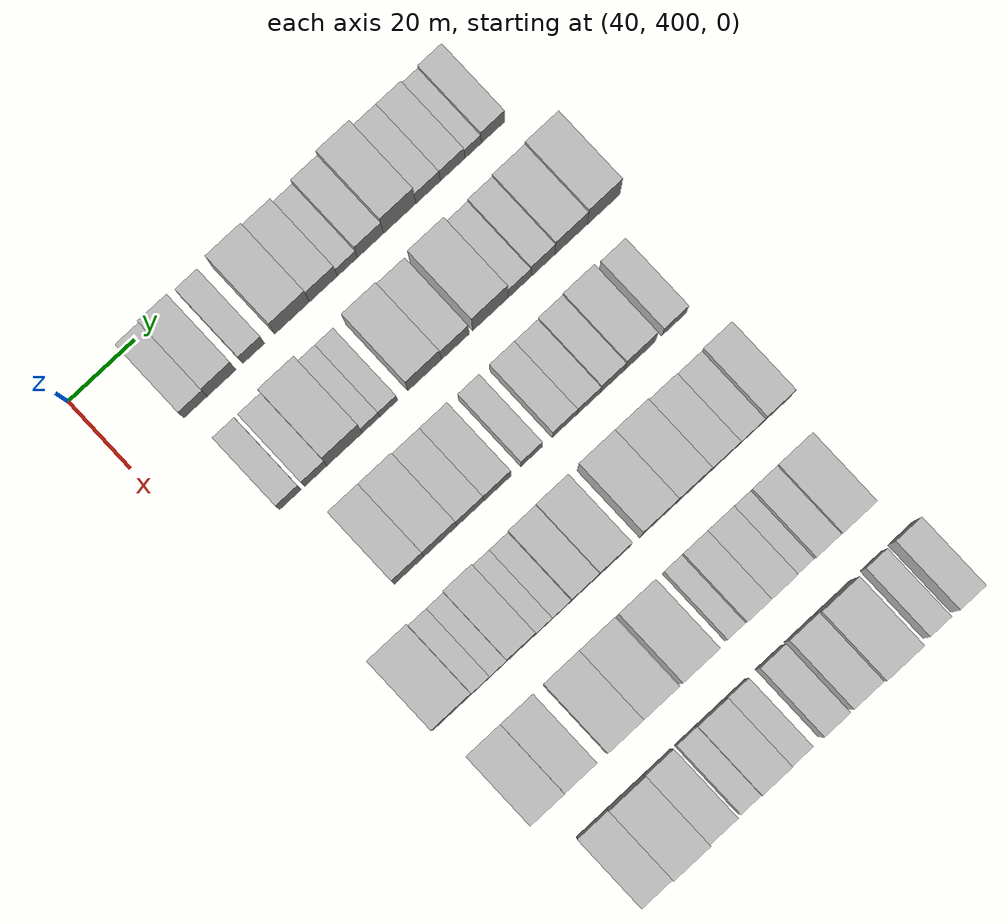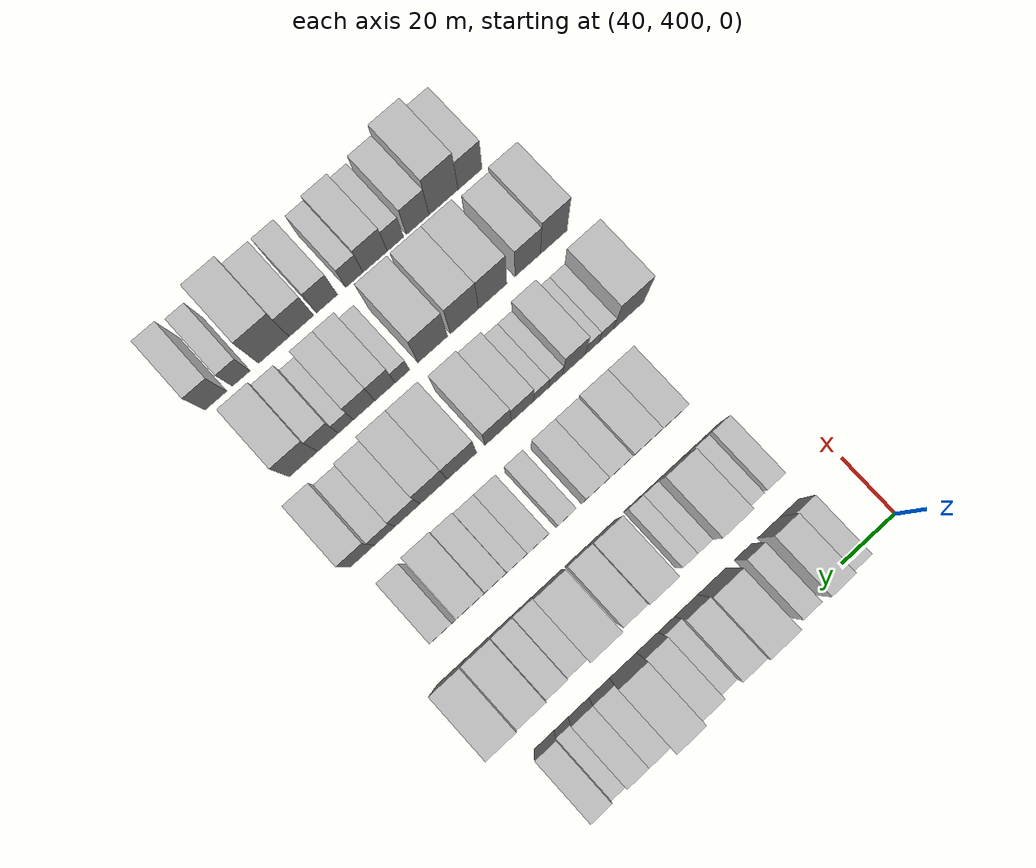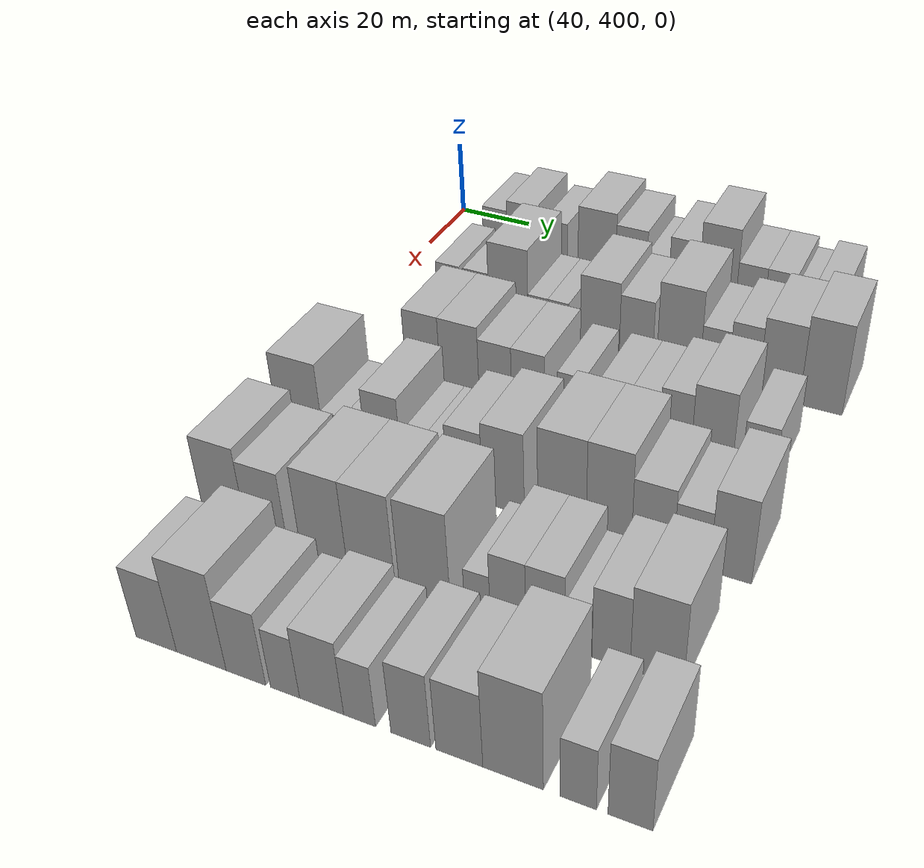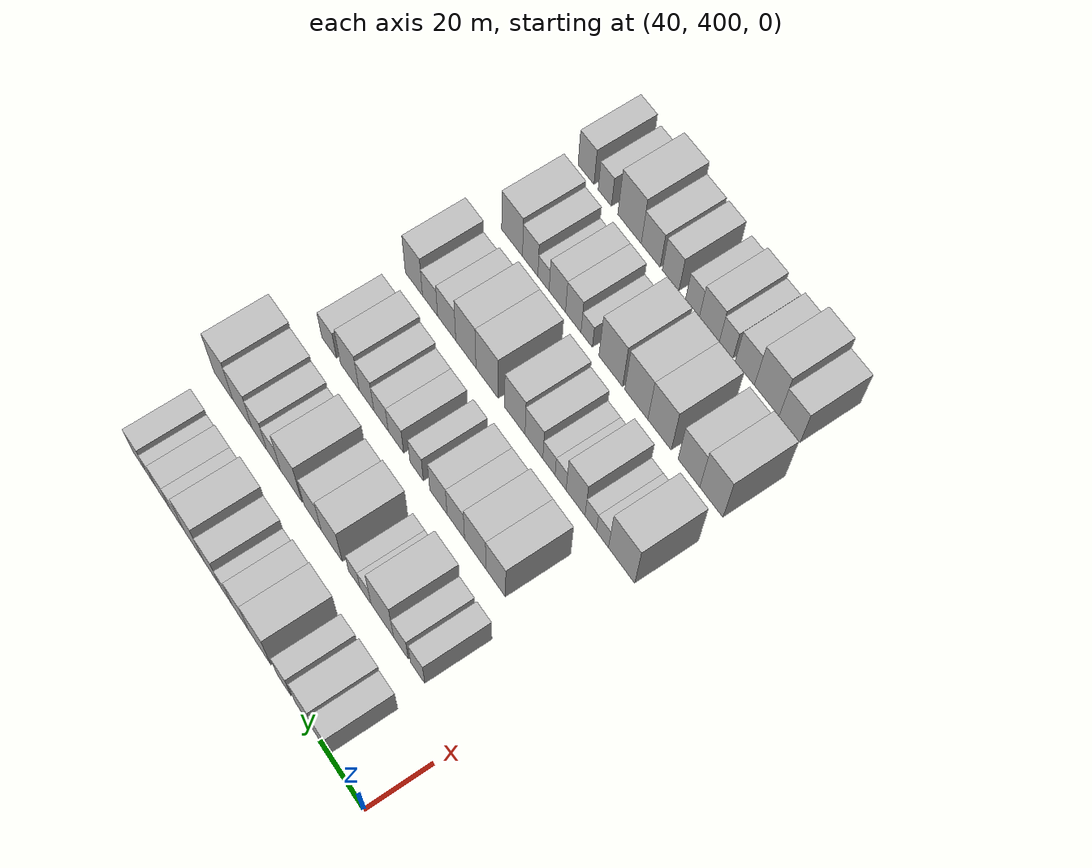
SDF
<sdf version="1.6">
 <world name="default">
  <model name="building_111">
   <static>1</static>
   <pose>50.0000 419.6284 0 0.000000 0.000000 0.000000</pose>
   <link name="link">
    <pose>0 0 7.50 0 0 0</pose>
    <collision name="collision"><geometry><box><size>20.0000 6.9505 15.0000</size></box></geometry></collision>
    <visual name="visual">
     <cast_shadows>0</cast_shadows>
     <geometry><box><size>20.0000 6.9505 15.0000</size></box></geometry>
     <material>
      <script>
       <uri>model://HANNAS_wall/materials/scripts</uri>
       <uri>model://HANNAS_wall/materials/textures</uri>
       <name>vrc/HANNAS_wall</name>
      </script>
     </material>
    </visual>
   </link>
  </model>
  <model name="building_112">
   <static>1</static>
   <pose>50.0000 427.3668 0 0.000000 0.000000 0.000000</pose>
   <link name="link">
    <pose>0 0 9.00 0 0 0</pose>
    <collision name="collision"><geometry><box><size>20.0000 8.5264 18.0000</size></box></geometry></collision>
    <visual name="visual">
     <cast_shadows>0</cast_shadows>
     <geometry><box><size>20.0000 8.5264 18.0000</size></box></geometry>
     <material>
      <script>
       <uri>model://HANNAS_wall/materials/scripts</uri>
       <uri>model://HANNAS_wall/materials/textures</uri>
       <name>vrc/HANNAS_wall</name>
      </script>
     </material>
    </visual>
   </link>
  </model>
  <model name="building_113">
   <static>1</static>
   <pose>50.0000 436.8863 0 0.000000 0.000000 0.000000</pose>
   <link name="link">
    <pose>0 0 7.50 0 0 0</pose>
    <collision name="collision"><geometry><box><size>20.0000 6.5126 15.0000</size></box></geometry></collision>
    <visual name="visual">
     <cast_shadows>0</cast_shadows>
     <geometry><box><size>20.0000 6.5126 15.0000</size></box></geometry>
     <material>
      <script>
       <uri>model://HANNAS_wall/materials/scripts</uri>
       <uri>model://HANNAS_wall/materials/textures</uri>
       <name>vrc/HANNAS_wall</name>
      </script>
     </material>
    </visual>
   </link>
  </model>
  <model name="building_114">
   <static>1</static>
   <pose>50.0000 448.3292 0 0.000000 0.000000 0.000000</pose>
   <link name="link">
    <pose>0 0 10.50 0 0 0</pose>
    <collision name="collision"><geometry><box><size>20.0000 10.3732 21.0000</size></box></geometry></collision>
    <visual name="visual">
     <cast_shadows>0</cast_shadows>
     <geometry><box><size>20.0000 10.3732 21.0000</size></box></geometry>
     <material>
      <script>
       <uri>model://HANNAS_wall/materials/scripts</uri>
       <uri>model://HANNAS_wall/materials/textures</uri>
       <name>vrc/HANNAS_wall</name>
      </script>
     </material>
    </visual>
   </link>
  </model>
  <model name="building_115">
   <static>1</static>
   <pose>50.0000 457.6762 0 0.000000 0.000000 0.000000</pose>
   <link name="link">
    <pose>0 0 9.00 0 0 0</pose>
    <collision name="collision"><geometry><box><size>20.0000 8.3207 18.0000</size></box></geometry></collision>
    <visual name="visual">
     <cast_shadows>0</cast_shadows>
     <geometry><box><size>20.0000 8.3207 18.0000</size></box></geometry>
     <material>
      <script>
       <uri>model://HANNAS_wall/materials/scripts</uri>
       <uri>model://HANNAS_wall/materials/textures</uri>
       <name>vrc/HANNAS_wall</name>
      </script>
     </material>
    </visual>
   </link>
  </model>
  <model name="building_116">
   <static>1</static>
   <pose>50.0000 464.8121 0 0.000000 0.000000 0.000000</pose>
   <link name="link">
    <pose>0 0 6.00 0 0 0</pose>
    <collision name="collision"><geometry><box><size>20.0000 5.9510 12.0000</size></box></geometry></collision>
    <visual name="visual">
     <cast_shadows>0</cast_shadows>
     <geometry><box><size>20.0000 5.9510 12.0000</size></box></geometry>
     <material>
      <script>
       <uri>model://HANNAS_wall/materials/scripts</uri>
       <uri>model://HANNAS_wall/materials/textures</uri>
       <name>vrc/HANNAS_wall</name>
      </script>
     </material>
    </visual>
   </link>
  </model>
  <model name="building_117">
   <static>1</static>
   <pose>50.0000 471.6848 0 0.000000 0.000000 0.000000</pose>
   <link name="link">
    <pose>0 0 9.00 0 0 0</pose>
    <collision name="collision"><geometry><box><size>20.0000 7.7943 18.0000</size></box></geometry></collision>
    <visual name="visual">
     <cast_shadows>0</cast_shadows>
     <geometry><box><size>20.0000 7.7943 18.0000</size></box></geometry>
     <material>
      <script>
       <uri>model://HANNAS_wall/materials/scripts</uri>
       <uri>model://HANNAS_wall/materials/textures</uri>
       <name>vrc/HANNAS_wall</name>
      </script>
     </material>
    </visual>
   </link>
  </model>
  <model name="building_118">
   <static>1</static>
   <pose>50.0000 480.4277 0 0.000000 0.000000 0.000000</pose>
   <link name="link">
    <pose>0 0 12.00 0 0 0</pose>
    <collision name="collision"><geometry><box><size>20.0000 9.6914 24.0000</size></box></geometry></collision>
    <visual name="visual">
     <cast_shadows>0</cast_shadows>
     <geometry><box><size>20.0000 9.6914 24.0000</size></box></geometry>
     <material>
      <script>
       <uri>model://HANNAS_wall/materials/scripts</uri>
       <uri>model://HANNAS_wall/materials/textures</uri>
       <name>vrc/HANNAS_wall</name>
      </script>
     </material>
    </visual>
   </link>
  </model>
  <model name="building_119">
   <static>1</static>
   <pose>50.0000 488.9293 0 0.000000 0.000000 0.000000</pose>
   <link name="link">
    <pose>0 0 7.50 0 0 0</pose>
    <collision name="collision"><geometry><box><size>20.0000 7.3118 15.0000</size></box></geometry></collision>
    <visual name="visual">
     <cast_shadows>0</cast_shadows>
     <geometry><box><size>20.0000 7.3118 15.0000</size></box></geometry>
     <material>
      <script>
       <uri>model://HANNAS_wall/materials/scripts</uri>
       <uri>model://HANNAS_wall/materials/textures</uri>
       <name>vrc/HANNAS_wall</name>
      </script>
     </material>
    </visual>
   </link>
  </model>
  <model name="building_120">
   <static>1</static>
   <pose>50.0000 496.2499 0 0.000000 0.000000 0.000000</pose>
   <link name="link">
    <pose>0 0 7.50 0 0 0</pose>
    <collision name="collision"><geometry><box><size>20.0000 7.3295 15.0000</size></box></geometry></collision>
    <visual name="visual">
     <cast_shadows>0</cast_shadows>
     <geometry><box><size>20.0000 7.3295 15.0000</size></box></geometry>
     <material>
      <script>
       <uri>model://HANNAS_wall/materials/scripts</uri>
       <uri>model://HANNAS_wall/materials/textures</uri>
       <name>vrc/HANNAS_wall</name>
      </script>
     </material>
    </visual>
   </link>
  </model>
  <model name="building_121">
   <static>1</static>
   <pose>50.0000 502.3638 0 0.000000 0.000000 0.000000</pose>
   <link name="link">
    <pose>0 0 6.00 0 0 0</pose>
    <collision name="collision"><geometry><box><size>20.0000 4.8982 12.0000</size></box></geometry></collision>
    <visual name="visual">
     <cast_shadows>0</cast_shadows>
     <geometry><box><size>20.0000 4.8982 12.0000</size></box></geometry>
     <material>
      <script>
       <uri>model://HANNAS_wall/materials/scripts</uri>
       <uri>model://HANNAS_wall/materials/textures</uri>
       <name>vrc/HANNAS_wall</name>
      </script>
     </material>
    </visual>
   </link>
  </model>
  <model name="building_122">
   <static>1</static>
   <pose>50.0000 508.3706 0 0.000000 0.000000 0.000000</pose>
   <link name="link">
    <pose>0 0 7.50 0 0 0</pose>
    <collision name="collision"><geometry><box><size>20.0000 7.1154 15.0000</size></box></geometry></collision>
    <visual name="visual">
     <cast_shadows>0</cast_shadows>
     <geometry><box><size>20.0000 7.1154 15.0000</size></box></geometry>
     <material>
      <script>
       <uri>model://HANNAS_wall/materials/scripts</uri>
       <uri>model://HANNAS_wall/materials/textures</uri>
       <name>vrc/HANNAS_wall</name>
      </script>
     </material>
    </visual>
   </link>
  </model>
  <model name="building_224">
   <static>1</static>
   <pose>79.0000 421.0408 0 0.000000 0.000000 0.000000</pose>
   <link name="link">
    <pose>0 0 7.50 0 0 0</pose>
    <collision name="collision"><geometry><box><size>20.0000 6.4064 15.0000</size></box></geometry></collision>
    <visual name="visual">
     <cast_shadows>0</cast_shadows>
     <geometry><box><size>20.0000 6.4064 15.0000</size></box></geometry>
     <material>
      <script>
       <uri>model://HANNAS_wall/materials/scripts</uri>
       <uri>model://HANNAS_wall/materials/textures</uri>
       <name>vrc/HANNAS_wall</name>
      </script>
     </material>
    </visual>
   </link>
  </model>
  <model name="building_225">
   <static>1</static>
   <pose>79.0000 428.5997 0 0.000000 0.000000 0.000000</pose>
   <link name="link">
    <pose>0 0 7.50 0 0 0</pose>
    <collision name="collision"><geometry><box><size>20.0000 6.7115 15.0000</size></box></geometry></collision>
    <visual name="visual">
     <cast_shadows>0</cast_shadows>
     <geometry><box><size>20.0000 6.7115 15.0000</size></box></geometry>
     <material>
      <script>
       <uri>model://HANNAS_wall/materials/scripts</uri>
       <uri>model://HANNAS_wall/materials/textures</uri>
       <name>vrc/HANNAS_wall</name>
      </script>
     </material>
    </visual>
   </link>
  </model>
  <model name="building_226">
   <static>1</static>
   <pose>79.0000 437.1567 0 0.000000 0.000000 0.000000</pose>
   <link name="link">
    <pose>0 0 12.00 0 0 0</pose>
    <collision name="collision"><geometry><box><size>20.0000 10.4025 24.0000</size></box></geometry></collision>
    <visual name="visual">
     <cast_shadows>0</cast_shadows>
     <geometry><box><size>20.0000 10.4025 24.0000</size></box></geometry>
     <material>
      <script>
       <uri>model://HANNAS_wall/materials/scripts</uri>
       <uri>model://HANNAS_wall/materials/textures</uri>
       <name>vrc/HANNAS_wall</name>
      </script>
     </material>
    </visual>
   </link>
  </model>
  <model name="building_227">
   <static>1</static>
   <pose>79.0000 444.9773 0 0.000000 0.000000 0.000000</pose>
   <link name="link">
    <pose>0 0 6.00 0 0 0</pose>
    <collision name="collision"><geometry><box><size>20.0000 5.2385 12.0000</size></box></geometry></collision>
    <visual name="visual">
     <cast_shadows>0</cast_shadows>
     <geometry><box><size>20.0000 5.2385 12.0000</size></box></geometry>
     <material>
      <script>
       <uri>model://HANNAS_wall/materials/scripts</uri>
       <uri>model://HANNAS_wall/materials/textures</uri>
       <name>vrc/HANNAS_wall</name>
      </script>
     </material>
    </visual>
   </link>
  </model>
  <model name="building_228">
   <static>1</static>
   <pose>79.0000 450.2814 0 0.000000 0.000000 0.000000</pose>
   <link name="link">
    <pose>0 0 6.00 0 0 0</pose>
    <collision name="collision"><geometry><box><size>20.0000 5.3697 12.0000</size></box></geometry></collision>
    <visual name="visual">
     <cast_shadows>0</cast_shadows>
     <geometry><box><size>20.0000 5.3697 12.0000</size></box></geometry>
     <material>
      <script>
       <uri>model://HANNAS_wall/materials/scripts</uri>
       <uri>model://HANNAS_wall/materials/textures</uri>
       <name>vrc/HANNAS_wall</name>
      </script>
     </material>
    </visual>
   </link>
  </model>
  <model name="building_229">
   <static>1</static>
   <pose>79.0000 460.9505 0 0.000000 0.000000 0.000000</pose>
   <link name="link">
    <pose>0 0 10.50 0 0 0</pose>
    <collision name="collision"><geometry><box><size>20.0000 9.9686 21.0000</size></box></geometry></collision>
    <visual name="visual">
     <cast_shadows>0</cast_shadows>
     <geometry><box><size>20.0000 9.9686 21.0000</size></box></geometry>
     <material>
      <script>
       <uri>model://HANNAS_wall/materials/scripts</uri>
       <uri>model://HANNAS_wall/materials/textures</uri>
       <name>vrc/HANNAS_wall</name>
      </script>
     </material>
    </visual>
   </link>
  </model>
  <model name="building_230">
   <static>1</static>
   <pose>79.0000 470.1178 0 0.000000 0.000000 0.000000</pose>
   <link name="link">
    <pose>0 0 9.00 0 0 0</pose>
    <collision name="collision"><geometry><box><size>20.0000 8.3659 18.0000</size></box></geometry></collision>
    <visual name="visual">
     <cast_shadows>0</cast_shadows>
     <geometry><box><size>20.0000 8.3659 18.0000</size></box></geometry>
     <material>
      <script>
       <uri>model://HANNAS_wall/materials/scripts</uri>
       <uri>model://HANNAS_wall/materials/textures</uri>
       <name>vrc/HANNAS_wall</name>
      </script>
     </material>
    </visual>
   </link>
  </model>
  <model name="building_231">
   <static>1</static>
   <pose>79.0000 480.5855 0 0.000000 0.000000 0.000000</pose>
   <link name="link">
    <pose>0 0 12.00 0 0 0</pose>
    <collision name="collision"><geometry><box><size>20.0000 10.5695 24.0000</size></box></geometry></collision>
    <visual name="visual">
     <cast_shadows>0</cast_shadows>
     <geometry><box><size>20.0000 10.5695 24.0000</size></box></geometry>
     <material>
      <script>
       <uri>model://HANNAS_wall/materials/scripts</uri>
       <uri>model://HANNAS_wall/materials/textures</uri>
       <name>vrc/HANNAS_wall</name>
      </script>
     </material>
    </visual>
   </link>
  </model>
  <model name="building_232">
   <static>1</static>
   <pose>79.0000 489.2863 0 0.000000 0.000000 0.000000</pose>
   <link name="link">
    <pose>0 0 7.50 0 0 0</pose>
    <collision name="collision"><geometry><box><size>20.0000 6.8323 15.0000</size></box></geometry></collision>
    <visual name="visual">
     <cast_shadows>0</cast_shadows>
     <geometry><box><size>20.0000 6.8323 15.0000</size></box></geometry>
     <material>
      <script>
       <uri>model://HANNAS_wall/materials/scripts</uri>
       <uri>model://HANNAS_wall/materials/textures</uri>
       <name>vrc/HANNAS_wall</name>
      </script>
     </material>
    </visual>
   </link>
  </model>
  <model name="building_233">
   <static>1</static>
   <pose>79.0000 496.3200 0 0.000000 0.000000 0.000000</pose>
   <link name="link">
    <pose>0 0 9.00 0 0 0</pose>
    <collision name="collision"><geometry><box><size>20.0000 7.2352 18.0000</size></box></geometry></collision>
    <visual name="visual">
     <cast_shadows>0</cast_shadows>
     <geometry><box><size>20.0000 7.2352 18.0000</size></box></geometry>
     <material>
      <script>
       <uri>model://HANNAS_wall/materials/scripts</uri>
       <uri>model://HANNAS_wall/materials/textures</uri>
       <name>vrc/HANNAS_wall</name>
      </script>
     </material>
    </visual>
   </link>
  </model>
  <model name="building_234">
   <static>1</static>
   <pose>79.0000 504.7480 0 0.000000 0.000000 0.000000</pose>
   <link name="link">
    <pose>0 0 10.50 0 0 0</pose>
    <collision name="collision"><geometry><box><size>20.0000 9.6207 21.0000</size></box></geometry></collision>
    <visual name="visual">
     <cast_shadows>0</cast_shadows>
     <geometry><box><size>20.0000 9.6207 21.0000</size></box></geometry>
     <material>
      <script>
       <uri>model://HANNAS_wall/materials/scripts</uri>
       <uri>model://HANNAS_wall/materials/textures</uri>
       <name>vrc/HANNAS_wall</name>
      </script>
     </material>
    </visual>
   </link>
  </model>
  <model name="building_235">
   <static>1</static>
   <pose>79.0000 514.4711 0 0.000000 0.000000 0.000000</pose>
   <link name="link">
    <pose>0 0 12.00 0 0 0</pose>
    <collision name="collision"><geometry><box><size>20.0000 9.8256 24.0000</size></box></geometry></collision>
    <visual name="visual">
     <cast_shadows>0</cast_shadows>
     <geometry><box><size>20.0000 9.8256 24.0000</size></box></geometry>
     <material>
      <script>
       <uri>model://HANNAS_wall/materials/scripts</uri>
       <uri>model://HANNAS_wall/materials/textures</uri>
       <name>vrc/HANNAS_wall</name>
      </script>
     </material>
    </visual>
   </link>
  </model>
  <model name="building_333">
   <static>1</static>
   <pose>108.0000 429.4847 0 0.000000 0.000000 0.000000</pose>
   <link name="link">
    <pose>0 0 10.50 0 0 0</pose>
    <collision name="collision"><geometry><box><size>20.0000 8.8197 21.0000</size></box></geometry></collision>
    <visual name="visual">
     <cast_shadows>0</cast_shadows>
     <geometry><box><size>20.0000 8.8197 21.0000</size></box></geometry>
     <material>
      <script>
       <uri>model://HANNAS_wall/materials/scripts</uri>
       <uri>model://HANNAS_wall/materials/textures</uri>
       <name>vrc/HANNAS_wall</name>
      </script>
     </material>
    </visual>
   </link>
  </model>
  <model name="building_334">
   <static>1</static>
   <pose>108.0000 438.7557 0 0.000000 0.000000 0.000000</pose>
   <link name="link">
    <pose>0 0 10.50 0 0 0</pose>
    <collision name="collision"><geometry><box><size>20.0000 9.7221 21.0000</size></box></geometry></collision>
    <visual name="visual">
     <cast_shadows>0</cast_shadows>
     <geometry><box><size>20.0000 9.7221 21.0000</size></box></geometry>
     <material>
      <script>
       <uri>model://HANNAS_wall/materials/scripts</uri>
       <uri>model://HANNAS_wall/materials/textures</uri>
       <name>vrc/HANNAS_wall</name>
      </script>
     </material>
    </visual>
   </link>
  </model>
  <model name="building_335">
   <static>1</static>
   <pose>108.0000 447.6447 0 0.000000 0.000000 0.000000</pose>
   <link name="link">
    <pose>0 0 9.00 0 0 0</pose>
    <collision name="collision"><geometry><box><size>20.0000 8.0560 18.0000</size></box></geometry></collision>
    <visual name="visual">
     <cast_shadows>0</cast_shadows>
     <geometry><box><size>20.0000 8.0560 18.0000</size></box></geometry>
     <material>
      <script>
       <uri>model://HANNAS_wall/materials/scripts</uri>
       <uri>model://HANNAS_wall/materials/textures</uri>
       <name>vrc/HANNAS_wall</name>
      </script>
     </material>
    </visual>
   </link>
  </model>
  <model name="building_336">
   <static>1</static>
   <pose>108.0000 455.7054 0 0.000000 0.000000 0.000000</pose>
   <link name="link">
    <pose>0 0 9.00 0 0 0</pose>
    <collision name="collision"><geometry><box><size>20.0000 8.0654 18.0000</size></box></geometry></collision>
    <visual name="visual">
     <cast_shadows>0</cast_shadows>
     <geometry><box><size>20.0000 8.0654 18.0000</size></box></geometry>
     <material>
      <script>
       <uri>model://HANNAS_wall/materials/scripts</uri>
       <uri>model://HANNAS_wall/materials/textures</uri>
       <name>vrc/HANNAS_wall</name>
      </script>
     </material>
    </visual>
   </link>
  </model>
  <model name="building_337">
   <static>1</static>
   <pose>108.0000 465.9015 0 0.000000 0.000000 0.000000</pose>
   <link name="link">
    <pose>0 0 7.50 0 0 0</pose>
    <collision name="collision"><geometry><box><size>20.0000 6.3270 15.0000</size></box></geometry></collision>
    <visual name="visual">
     <cast_shadows>0</cast_shadows>
     <geometry><box><size>20.0000 6.3270 15.0000</size></box></geometry>
     <material>
      <script>
       <uri>model://HANNAS_wall/materials/scripts</uri>
       <uri>model://HANNAS_wall/materials/textures</uri>
       <name>vrc/HANNAS_wall</name>
      </script>
     </material>
    </visual>
   </link>
  </model>
  <model name="building_338">
   <static>1</static>
   <pose>108.0000 475.7556 0 0.000000 0.000000 0.000000</pose>
   <link name="link">
    <pose>0 0 7.50 0 0 0</pose>
    <collision name="collision"><geometry><box><size>20.0000 7.3811 15.0000</size></box></geometry></collision>
    <visual name="visual">
     <cast_shadows>0</cast_shadows>
     <geometry><box><size>20.0000 7.3811 15.0000</size></box></geometry>
     <material>
      <script>
       <uri>model://HANNAS_wall/materials/scripts</uri>
       <uri>model://HANNAS_wall/materials/textures</uri>
       <name>vrc/HANNAS_wall</name>
      </script>
     </material>
    </visual>
   </link>
  </model>
  <model name="building_339">
   <static>1</static>
   <pose>108.0000 482.9212 0 0.000000 0.000000 0.000000</pose>
   <link name="link">
    <pose>0 0 7.50 0 0 0</pose>
    <collision name="collision"><geometry><box><size>20.0000 6.9500 15.0000</size></box></geometry></collision>
    <visual name="visual">
     <cast_shadows>0</cast_shadows>
     <geometry><box><size>20.0000 6.9500 15.0000</size></box></geometry>
     <material>
      <script>
       <uri>model://HANNAS_wall/materials/scripts</uri>
       <uri>model://HANNAS_wall/materials/textures</uri>
       <name>vrc/HANNAS_wall</name>
      </script>
     </material>
    </visual>
   </link>
  </model>
  <model name="building_340">
   <static>1</static>
   <pose>108.0000 490.0046 0 0.000000 0.000000 0.000000</pose>
   <link name="link">
    <pose>0 0 9.00 0 0 0</pose>
    <collision name="collision"><geometry><box><size>20.0000 7.2167 18.0000</size></box></geometry></collision>
    <visual name="visual">
     <cast_shadows>0</cast_shadows>
     <geometry><box><size>20.0000 7.2167 18.0000</size></box></geometry>
     <material>
      <script>
       <uri>model://HANNAS_wall/materials/scripts</uri>
       <uri>model://HANNAS_wall/materials/textures</uri>
       <name>vrc/HANNAS_wall</name>
      </script>
     </material>
    </visual>
   </link>
  </model>
  <model name="building_341">
   <static>1</static>
   <pose>108.0000 498.2079 0 0.000000 0.000000 0.000000</pose>
   <link name="link">
    <pose>0 0 10.50 0 0 0</pose>
    <collision name="collision"><geometry><box><size>20.0000 9.1900 21.0000</size></box></geometry></collision>
    <visual name="visual">
     <cast_shadows>0</cast_shadows>
     <geometry><box><size>20.0000 9.1900 21.0000</size></box></geometry>
     <material>
      <script>
       <uri>model://HANNAS_wall/materials/scripts</uri>
       <uri>model://HANNAS_wall/materials/textures</uri>
       <name>vrc/HANNAS_wall</name>
      </script>
     </material>
    </visual>
   </link>
  </model>
  <model name="building_342">
   <static>1</static>
   <pose>108.0000 508.4698 0 0.000000 0.000000 0.000000</pose>
   <link name="link">
    <pose>0 0 7.50 0 0 0</pose>
    <collision name="collision"><geometry><box><size>20.0000 7.3339 15.0000</size></box></geometry></collision>
    <visual name="visual">
     <cast_shadows>0</cast_shadows>
     <geometry><box><size>20.0000 7.3339 15.0000</size></box></geometry>
     <material>
      <script>
       <uri>model://HANNAS_wall/materials/scripts</uri>
       <uri>model://HANNAS_wall/materials/textures</uri>
       <name>vrc/HANNAS_wall</name>
      </script>
     </material>
    </visual>
   </link>
  </model>
  <model name="building_446">
   <static>1</static>
   <pose>137.0000 415.4730 0 0.000000 0.000000 0.000000</pose>
   <link name="link">
    <pose>0 0 12.00 0 0 0</pose>
    <collision name="collision"><geometry><box><size>20.0000 11.4408 24.0000</size></box></geometry></collision>
    <visual name="visual">
     <cast_shadows>0</cast_shadows>
     <geometry><box><size>20.0000 11.4408 24.0000</size></box></geometry>
     <material>
      <script>
       <uri>model://HANNAS_wall/materials/scripts</uri>
       <uri>model://HANNAS_wall/materials/textures</uri>
       <name>vrc/HANNAS_wall</name>
      </script>
     </material>
    </visual>
   </link>
  </model>
  <model name="building_447">
   <static>1</static>
   <pose>137.0000 423.8758 0 0.000000 0.000000 0.000000</pose>
   <link name="link">
    <pose>0 0 6.00 0 0 0</pose>
    <collision name="collision"><geometry><box><size>20.0000 5.3649 12.0000</size></box></geometry></collision>
    <visual name="visual">
     <cast_shadows>0</cast_shadows>
     <geometry><box><size>20.0000 5.3649 12.0000</size></box></geometry>
     <material>
      <script>
       <uri>model://HANNAS_wall/materials/scripts</uri>
       <uri>model://HANNAS_wall/materials/textures</uri>
       <name>vrc/HANNAS_wall</name>
      </script>
     </material>
    </visual>
   </link>
  </model>
  <model name="building_448">
   <static>1</static>
   <pose>137.0000 429.0715 0 0.000000 0.000000 0.000000</pose>
   <link name="link">
    <pose>0 0 6.00 0 0 0</pose>
    <collision name="collision"><geometry><box><size>20.0000 5.0266 12.0000</size></box></geometry></collision>
    <visual name="visual">
     <cast_shadows>0</cast_shadows>
     <geometry><box><size>20.0000 5.0266 12.0000</size></box></geometry>
     <material>
      <script>
       <uri>model://HANNAS_wall/materials/scripts</uri>
       <uri>model://HANNAS_wall/materials/textures</uri>
       <name>vrc/HANNAS_wall</name>
      </script>
     </material>
    </visual>
   </link>
  </model>
  <model name="building_449">
   <static>1</static>
   <pose>137.0000 435.7945 0 0.000000 0.000000 0.000000</pose>
   <link name="link">
    <pose>0 0 10.50 0 0 0</pose>
    <collision name="collision"><geometry><box><size>20.0000 8.4194 21.0000</size></box></geometry></collision>
    <visual name="visual">
     <cast_shadows>0</cast_shadows>
     <geometry><box><size>20.0000 8.4194 21.0000</size></box></geometry>
     <material>
      <script>
       <uri>model://HANNAS_wall/materials/scripts</uri>
       <uri>model://HANNAS_wall/materials/textures</uri>
       <name>vrc/HANNAS_wall</name>
      </script>
     </material>
    </visual>
   </link>
  </model>
  <model name="building_450">
   <static>1</static>
   <pose>137.0000 442.4986 0 0.000000 0.000000 0.000000</pose>
   <link name="link">
    <pose>0 0 6.00 0 0 0</pose>
    <collision name="collision"><geometry><box><size>20.0000 4.9888 12.0000</size></box></geometry></collision>
    <visual name="visual">
     <cast_shadows>0</cast_shadows>
     <geometry><box><size>20.0000 4.9888 12.0000</size></box></geometry>
     <material>
      <script>
       <uri>model://HANNAS_wall/materials/scripts</uri>
       <uri>model://HANNAS_wall/materials/textures</uri>
       <name>vrc/HANNAS_wall</name>
      </script>
     </material>
    </visual>
   </link>
  </model>
  <model name="building_451">
   <static>1</static>
   <pose>137.0000 447.7717 0 0.000000 0.000000 0.000000</pose>
   <link name="link">
    <pose>0 0 6.00 0 0 0</pose>
    <collision name="collision"><geometry><box><size>20.0000 5.5574 12.0000</size></box></geometry></collision>
    <visual name="visual">
     <cast_shadows>0</cast_shadows>
     <geometry><box><size>20.0000 5.5574 12.0000</size></box></geometry>
     <material>
      <script>
       <uri>model://HANNAS_wall/materials/scripts</uri>
       <uri>model://HANNAS_wall/materials/textures</uri>
       <name>vrc/HANNAS_wall</name>
      </script>
     </material>
    </visual>
   </link>
  </model>
  <model name="building_452">
   <static>1</static>
   <pose>137.0000 454.6303 0 0.000000 0.000000 0.000000</pose>
   <link name="link">
    <pose>0 0 9.00 0 0 0</pose>
    <collision name="collision"><geometry><box><size>20.0000 8.1600 18.0000</size></box></geometry></collision>
    <visual name="visual">
     <cast_shadows>0</cast_shadows>
     <geometry><box><size>20.0000 8.1600 18.0000</size></box></geometry>
     <material>
      <script>
       <uri>model://HANNAS_wall/materials/scripts</uri>
       <uri>model://HANNAS_wall/materials/textures</uri>
       <name>vrc/HANNAS_wall</name>
      </script>
     </material>
    </visual>
   </link>
  </model>
  <model name="building_453">
   <static>1</static>
   <pose>137.0000 463.4132 0 0.000000 0.000000 0.000000</pose>
   <link name="link">
    <pose>0 0 10.50 0 0 0</pose>
    <collision name="collision"><geometry><box><size>20.0000 9.4057 21.0000</size></box></geometry></collision>
    <visual name="visual">
     <cast_shadows>0</cast_shadows>
     <geometry><box><size>20.0000 9.4057 21.0000</size></box></geometry>
     <material>
      <script>
       <uri>model://HANNAS_wall/materials/scripts</uri>
       <uri>model://HANNAS_wall/materials/textures</uri>
       <name>vrc/HANNAS_wall</name>
      </script>
     </material>
    </visual>
   </link>
  </model>
  <model name="building_454">
   <static>1</static>
   <pose>137.0000 476.3909 0 0.000000 0.000000 0.000000</pose>
   <link name="link">
    <pose>0 0 12.00 0 0 0</pose>
    <collision name="collision"><geometry><box><size>20.0000 10.5498 24.0000</size></box></geometry></collision>
    <visual name="visual">
     <cast_shadows>0</cast_shadows>
     <geometry><box><size>20.0000 10.5498 24.0000</size></box></geometry>
     <material>
      <script>
       <uri>model://HANNAS_wall/materials/scripts</uri>
       <uri>model://HANNAS_wall/materials/textures</uri>
       <name>vrc/HANNAS_wall</name>
      </script>
     </material>
    </visual>
   </link>
  </model>
  <model name="building_455">
   <static>1</static>
   <pose>137.0000 486.4866 0 0.000000 0.000000 0.000000</pose>
   <link name="link">
    <pose>0 0 12.00 0 0 0</pose>
    <collision name="collision"><geometry><box><size>20.0000 9.6416 24.0000</size></box></geometry></collision>
    <visual name="visual">
     <cast_shadows>0</cast_shadows>
     <geometry><box><size>20.0000 9.6416 24.0000</size></box></geometry>
     <material>
      <script>
       <uri>model://HANNAS_wall/materials/scripts</uri>
       <uri>model://HANNAS_wall/materials/textures</uri>
       <name>vrc/HANNAS_wall</name>
      </script>
     </material>
    </visual>
   </link>
  </model>
  <model name="building_456">
   <static>1</static>
   <pose>137.0000 495.6913 0 0.000000 0.000000 0.000000</pose>
   <link name="link">
    <pose>0 0 9.00 0 0 0</pose>
    <collision name="collision"><geometry><box><size>20.0000 8.7677 18.0000</size></box></geometry></collision>
    <visual name="visual">
     <cast_shadows>0</cast_shadows>
     <geometry><box><size>20.0000 8.7677 18.0000</size></box></geometry>
     <material>
      <script>
       <uri>model://HANNAS_wall/materials/scripts</uri>
       <uri>model://HANNAS_wall/materials/textures</uri>
       <name>vrc/HANNAS_wall</name>
      </script>
     </material>
    </visual>
   </link>
  </model>
  <model name="building_457">
   <static>1</static>
   <pose>137.0000 503.7873 0 0.000000 0.000000 0.000000</pose>
   <link name="link">
    <pose>0 0 7.50 0 0 0</pose>
    <collision name="collision"><geometry><box><size>20.0000 7.4244 15.0000</size></box></geometry></collision>
    <visual name="visual">
     <cast_shadows>0</cast_shadows>
     <geometry><box><size>20.0000 7.4244 15.0000</size></box></geometry>
     <material>
      <script>
       <uri>model://HANNAS_wall/materials/scripts</uri>
       <uri>model://HANNAS_wall/materials/textures</uri>
       <name>vrc/HANNAS_wall</name>
      </script>
     </material>
    </visual>
   </link>
  </model>
  <model name="building_458">
   <static>1</static>
   <pose>137.0000 511.7097 0 0.000000 0.000000 0.000000</pose>
   <link name="link">
    <pose>0 0 10.50 0 0 0</pose>
    <collision name="collision"><geometry><box><size>20.0000 8.4203 21.0000</size></box></geometry></collision>
    <visual name="visual">
     <cast_shadows>0</cast_shadows>
     <geometry><box><size>20.0000 8.4203 21.0000</size></box></geometry>
     <material>
      <script>
       <uri>model://HANNAS_wall/materials/scripts</uri>
       <uri>model://HANNAS_wall/materials/textures</uri>
       <name>vrc/HANNAS_wall</name>
      </script>
     </material>
    </visual>
   </link>
  </model>
  <model name="building_562">
   <static>1</static>
   <pose>166.0000 416.3851 0 0.000000 0.000000 0.000000</pose>
   <link name="link">
    <pose>0 0 12.00 0 0 0</pose>
    <collision name="collision"><geometry><box><size>20.0000 9.9612 24.0000</size></box></geometry></collision>
    <visual name="visual">
     <cast_shadows>0</cast_shadows>
     <geometry><box><size>20.0000 9.9612 24.0000</size></box></geometry>
     <material>
      <script>
       <uri>model://HANNAS_wall/materials/scripts</uri>
       <uri>model://HANNAS_wall/materials/textures</uri>
       <name>vrc/HANNAS_wall</name>
      </script>
     </material>
    </visual>
   </link>
  </model>
  <model name="building_563">
   <static>1</static>
   <pose>166.0000 426.0803 0 0.000000 0.000000 0.000000</pose>
   <link name="link">
    <pose>0 0 10.50 0 0 0</pose>
    <collision name="collision"><geometry><box><size>20.0000 9.4292 21.0000</size></box></geometry></collision>
    <visual name="visual">
     <cast_shadows>0</cast_shadows>
     <geometry><box><size>20.0000 9.4292 21.0000</size></box></geometry>
     <material>
      <script>
       <uri>model://HANNAS_wall/materials/scripts</uri>
       <uri>model://HANNAS_wall/materials/textures</uri>
       <name>vrc/HANNAS_wall</name>
      </script>
     </material>
    </visual>
   </link>
  </model>
  <model name="building_564">
   <static>1</static>
   <pose>166.0000 438.9914 0 0.000000 0.000000 0.000000</pose>
   <link name="link">
    <pose>0 0 12.00 0 0 0</pose>
    <collision name="collision"><geometry><box><size>20.0000 10.3930 24.0000</size></box></geometry></collision>
    <visual name="visual">
     <cast_shadows>0</cast_shadows>
     <geometry><box><size>20.0000 10.3930 24.0000</size></box></geometry>
     <material>
      <script>
       <uri>model://HANNAS_wall/materials/scripts</uri>
       <uri>model://HANNAS_wall/materials/textures</uri>
       <name>vrc/HANNAS_wall</name>
      </script>
     </material>
    </visual>
   </link>
  </model>
  <model name="building_565">
   <static>1</static>
   <pose>166.0000 449.3657 0 0.000000 0.000000 0.000000</pose>
   <link name="link">
    <pose>0 0 12.00 0 0 0</pose>
    <collision name="collision"><geometry><box><size>20.0000 10.3556 24.0000</size></box></geometry></collision>
    <visual name="visual">
     <cast_shadows>0</cast_shadows>
     <geometry><box><size>20.0000 10.3556 24.0000</size></box></geometry>
     <material>
      <script>
       <uri>model://HANNAS_wall/materials/scripts</uri>
       <uri>model://HANNAS_wall/materials/textures</uri>
       <name>vrc/HANNAS_wall</name>
      </script>
     </material>
    </visual>
   </link>
  </model>
  <model name="building_566">
   <static>1</static>
   <pose>166.0000 460.9386 0 0.000000 0.000000 0.000000</pose>
   <link name="link">
    <pose>0 0 12.00 0 0 0</pose>
    <collision name="collision"><geometry><box><size>20.0000 10.7902 24.0000</size></box></geometry></collision>
    <visual name="visual">
     <cast_shadows>0</cast_shadows>
     <geometry><box><size>20.0000 10.7902 24.0000</size></box></geometry>
     <material>
      <script>
       <uri>model://HANNAS_wall/materials/scripts</uri>
       <uri>model://HANNAS_wall/materials/textures</uri>
       <name>vrc/HANNAS_wall</name>
      </script>
     </material>
    </visual>
   </link>
  </model>
  <model name="building_567">
   <static>1</static>
   <pose>166.0000 471.9724 0 0.000000 0.000000 0.000000</pose>
   <link name="link">
    <pose>0 0 6.00 0 0 0</pose>
    <collision name="collision"><geometry><box><size>20.0000 5.2773 12.0000</size></box></geometry></collision>
    <visual name="visual">
     <cast_shadows>0</cast_shadows>
     <geometry><box><size>20.0000 5.2773 12.0000</size></box></geometry>
     <material>
      <script>
       <uri>model://HANNAS_wall/materials/scripts</uri>
       <uri>model://HANNAS_wall/materials/textures</uri>
       <name>vrc/HANNAS_wall</name>
      </script>
     </material>
    </visual>
   </link>
  </model>
  <model name="building_568">
   <static>1</static>
   <pose>166.0000 478.2190 0 0.000000 0.000000 0.000000</pose>
   <link name="link">
    <pose>0 0 9.00 0 0 0</pose>
    <collision name="collision"><geometry><box><size>20.0000 7.2160 18.0000</size></box></geometry></collision>
    <visual name="visual">
     <cast_shadows>0</cast_shadows>
     <geometry><box><size>20.0000 7.2160 18.0000</size></box></geometry>
     <material>
      <script>
       <uri>model://HANNAS_wall/materials/scripts</uri>
       <uri>model://HANNAS_wall/materials/textures</uri>
       <name>vrc/HANNAS_wall</name>
      </script>
     </material>
    </visual>
   </link>
  </model>
  <model name="building_569">
   <static>1</static>
   <pose>166.0000 485.6816 0 0.000000 0.000000 0.000000</pose>
   <link name="link">
    <pose>0 0 9.00 0 0 0</pose>
    <collision name="collision"><geometry><box><size>20.0000 7.7092 18.0000</size></box></geometry></collision>
    <visual name="visual">
     <cast_shadows>0</cast_shadows>
     <geometry><box><size>20.0000 7.7092 18.0000</size></box></geometry>
     <material>
      <script>
       <uri>model://HANNAS_wall/materials/scripts</uri>
       <uri>model://HANNAS_wall/materials/textures</uri>
       <name>vrc/HANNAS_wall</name>
      </script>
     </material>
    </visual>
   </link>
  </model>
  <model name="building_570">
   <static>1</static>
   <pose>166.0000 492.2013 0 0.000000 0.000000 0.000000</pose>
   <link name="link">
    <pose>0 0 6.00 0 0 0</pose>
    <collision name="collision"><geometry><box><size>20.0000 5.3302 12.0000</size></box></geometry></collision>
    <visual name="visual">
     <cast_shadows>0</cast_shadows>
     <geometry><box><size>20.0000 5.3302 12.0000</size></box></geometry>
     <material>
      <script>
       <uri>model://HANNAS_wall/materials/scripts</uri>
       <uri>model://HANNAS_wall/materials/textures</uri>
       <name>vrc/HANNAS_wall</name>
      </script>
     </material>
    </visual>
   </link>
  </model>
  <model name="building_571">
   <static>1</static>
   <pose>166.0000 498.5348 0 0.000000 0.000000 0.000000</pose>
   <link name="link">
    <pose>0 0 9.00 0 0 0</pose>
    <collision name="collision"><geometry><box><size>20.0000 7.3366 18.0000</size></box></geometry></collision>
    <visual name="visual">
     <cast_shadows>0</cast_shadows>
     <geometry><box><size>20.0000 7.3366 18.0000</size></box></geometry>
     <material>
      <script>
       <uri>model://HANNAS_wall/materials/scripts</uri>
       <uri>model://HANNAS_wall/materials/textures</uri>
       <name>vrc/HANNAS_wall</name>
      </script>
     </material>
    </visual>
   </link>
  </model>
  <model name="building_572">
   <static>1</static>
   <pose>166.0000 507.2426 0 0.000000 0.000000 0.000000</pose>
   <link name="link">
    <pose>0 0 10.50 0 0 0</pose>
    <collision name="collision"><geometry><box><size>20.0000 10.0791 21.0000</size></box></geometry></collision>
    <visual name="visual">
     <cast_shadows>0</cast_shadows>
     <geometry><box><size>20.0000 10.0791 21.0000</size></box></geometry>
     <material>
      <script>
       <uri>model://HANNAS_wall/materials/scripts</uri>
       <uri>model://HANNAS_wall/materials/textures</uri>
       <name>vrc/HANNAS_wall</name>
      </script>
     </material>
    </visual>
   </link>
  </model>
  <model name="building_672">
   <static>1</static>
   <pose>195.0000 421.1711 0 0.000000 0.000000 0.000000</pose>
   <link name="link">
    <pose>0 0 9.00 0 0 0</pose>
    <collision name="collision"><geometry><box><size>20.0000 8.9884 18.0000</size></box></geometry></collision>
    <visual name="visual">
     <cast_shadows>0</cast_shadows>
     <geometry><box><size>20.0000 8.9884 18.0000</size></box></geometry>
     <material>
      <script>
       <uri>model://HANNAS_wall/materials/scripts</uri>
       <uri>model://HANNAS_wall/materials/textures</uri>
       <name>vrc/HANNAS_wall</name>
      </script>
     </material>
    </visual>
   </link>
  </model>
  <model name="building_673">
   <static>1</static>
   <pose>195.0000 431.0346 0 0.000000 0.000000 0.000000</pose>
   <link name="link">
    <pose>0 0 12.00 0 0 0</pose>
    <collision name="collision"><geometry><box><size>20.0000 10.7387 24.0000</size></box></geometry></collision>
    <visual name="visual">
     <cast_shadows>0</cast_shadows>
     <geometry><box><size>20.0000 10.7387 24.0000</size></box></geometry>
     <material>
      <script>
       <uri>model://HANNAS_wall/materials/scripts</uri>
       <uri>model://HANNAS_wall/materials/textures</uri>
       <name>vrc/HANNAS_wall</name>
      </script>
     </material>
    </visual>
   </link>
  </model>
  <model name="building_674">
   <static>1</static>
   <pose>195.0000 440.5826 0 0.000000 0.000000 0.000000</pose>
   <link name="link">
    <pose>0 0 9.00 0 0 0</pose>
    <collision name="collision"><geometry><box><size>20.0000 8.3573 18.0000</size></box></geometry></collision>
    <visual name="visual">
     <cast_shadows>0</cast_shadows>
     <geometry><box><size>20.0000 8.3573 18.0000</size></box></geometry>
     <material>
      <script>
       <uri>model://HANNAS_wall/materials/scripts</uri>
       <uri>model://HANNAS_wall/materials/textures</uri>
       <name>vrc/HANNAS_wall</name>
      </script>
     </material>
    </visual>
   </link>
  </model>
  <model name="building_675">
   <static>1</static>
   <pose>195.0000 448.7636 0 0.000000 0.000000 0.000000</pose>
   <link name="link">
    <pose>0 0 7.50 0 0 0</pose>
    <collision name="collision"><geometry><box><size>20.0000 6.0046 15.0000</size></box></geometry></collision>
    <visual name="visual">
     <cast_shadows>0</cast_shadows>
     <geometry><box><size>20.0000 6.0046 15.0000</size></box></geometry>
     <material>
      <script>
       <uri>model://HANNAS_wall/materials/scripts</uri>
       <uri>model://HANNAS_wall/materials/textures</uri>
       <name>vrc/HANNAS_wall</name>
      </script>
     </material>
    </visual>
   </link>
  </model>
  <model name="building_676">
   <static>1</static>
   <pose>195.0000 456.2101 0 0.000000 0.000000 0.000000</pose>
   <link name="link">
    <pose>0 0 9.00 0 0 0</pose>
    <collision name="collision"><geometry><box><size>20.0000 8.8884 18.0000</size></box></geometry></collision>
    <visual name="visual">
     <cast_shadows>0</cast_shadows>
     <geometry><box><size>20.0000 8.8884 18.0000</size></box></geometry>
     <material>
      <script>
       <uri>model://HANNAS_wall/materials/scripts</uri>
       <uri>model://HANNAS_wall/materials/textures</uri>
       <name>vrc/HANNAS_wall</name>
      </script>
     </material>
    </visual>
   </link>
  </model>
  <model name="building_677">
   <static>1</static>
   <pose>195.0000 463.7993 0 0.000000 0.000000 0.000000</pose>
   <link name="link">
    <pose>0 0 7.50 0 0 0</pose>
    <collision name="collision"><geometry><box><size>20.0000 6.2899 15.0000</size></box></geometry></collision>
    <visual name="visual">
     <cast_shadows>0</cast_shadows>
     <geometry><box><size>20.0000 6.2899 15.0000</size></box></geometry>
     <material>
      <script>
       <uri>model://HANNAS_wall/materials/scripts</uri>
       <uri>model://HANNAS_wall/materials/textures</uri>
       <name>vrc/HANNAS_wall</name>
      </script>
     </material>
    </visual>
   </link>
  </model>
  <model name="building_678">
   <static>1</static>
   <pose>195.0000 473.7460 0 0.000000 0.000000 0.000000</pose>
   <link name="link">
    <pose>0 0 9.00 0 0 0</pose>
    <collision name="collision"><geometry><box><size>20.0000 7.6034 18.0000</size></box></geometry></collision>
    <visual name="visual">
     <cast_shadows>0</cast_shadows>
     <geometry><box><size>20.0000 7.6034 18.0000</size></box></geometry>
     <material>
      <script>
       <uri>model://HANNAS_wall/materials/scripts</uri>
       <uri>model://HANNAS_wall/materials/textures</uri>
       <name>vrc/HANNAS_wall</name>
      </script>
     </material>
    </visual>
   </link>
  </model>
  <model name="building_679">
   <static>1</static>
   <pose>195.0000 482.9331 0 0.000000 0.000000 0.000000</pose>
   <link name="link">
    <pose>0 0 9.00 0 0 0</pose>
    <collision name="collision"><geometry><box><size>20.0000 8.7708 18.0000</size></box></geometry></collision>
    <visual name="visual">
     <cast_shadows>0</cast_shadows>
     <geometry><box><size>20.0000 8.7708 18.0000</size></box></geometry>
     <material>
      <script>
       <uri>model://HANNAS_wall/materials/scripts</uri>
       <uri>model://HANNAS_wall/materials/textures</uri>
       <name>vrc/HANNAS_wall</name>
      </script>
     </material>
    </visual>
   </link>
  </model>
  <model name="building_680">
   <static>1</static>
   <pose>195.0000 492.8026 0 0.000000 0.000000 0.000000</pose>
   <link name="link">
    <pose>0 0 12.00 0 0 0</pose>
    <collision name="collision"><geometry><box><size>20.0000 10.9683 24.0000</size></box></geometry></collision>
    <visual name="visual">
     <cast_shadows>0</cast_shadows>
     <geometry><box><size>20.0000 10.9683 24.0000</size></box></geometry>
     <material>
      <script>
       <uri>model://HANNAS_wall/materials/scripts</uri>
       <uri>model://HANNAS_wall/materials/textures</uri>
       <name>vrc/HANNAS_wall</name>
      </script>
     </material>
    </visual>
   </link>
  </model>
  <model name="building_681">
   <static>1</static>
   <pose>195.0000 504.4460 0 0.000000 0.000000 0.000000</pose>
   <link name="link">
    <pose>0 0 7.50 0 0 0</pose>
    <collision name="collision"><geometry><box><size>20.0000 6.3186 15.0000</size></box></geometry></collision>
    <visual name="visual">
     <cast_shadows>0</cast_shadows>
     <geometry><box><size>20.0000 6.3186 15.0000</size></box></geometry>
     <material>
      <script>
       <uri>model://HANNAS_wall/materials/scripts</uri>
       <uri>model://HANNAS_wall/materials/textures</uri>
       <name>vrc/HANNAS_wall</name>
      </script>
     </material>
    </visual>
   </link>
  </model>
  <model name="building_682">
   <static>1</static>
   <pose>195.0000 513.4269 0 0.000000 0.000000 0.000000</pose>
   <link name="link">
    <pose>0 0 9.00 0 0 0</pose>
    <collision name="collision"><geometry><box><size>20.0000 7.6432 18.0000</size></box></geometry></collision>
    <visual name="visual">
     <cast_shadows>0</cast_shadows>
     <geometry><box><size>20.0000 7.6432 18.0000</size></box></geometry>
     <material>
      <script>
       <uri>model://HANNAS_wall/materials/scripts</uri>
       <uri>model://HANNAS_wall/materials/textures</uri>
       <name>vrc/HANNAS_wall</name>
      </script>
     </material>
    </visual>
   </link>
  </model>
 </world>
</sdf>
